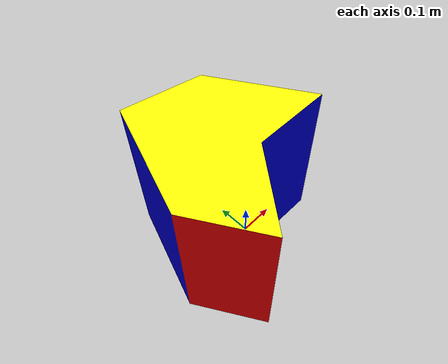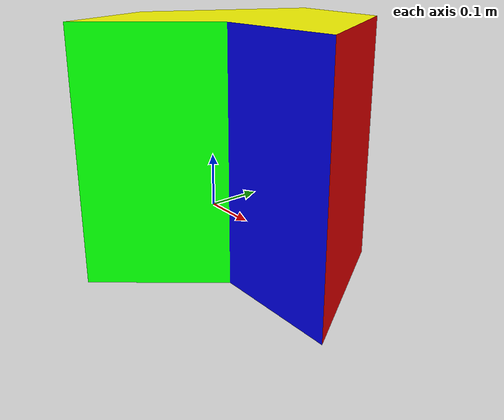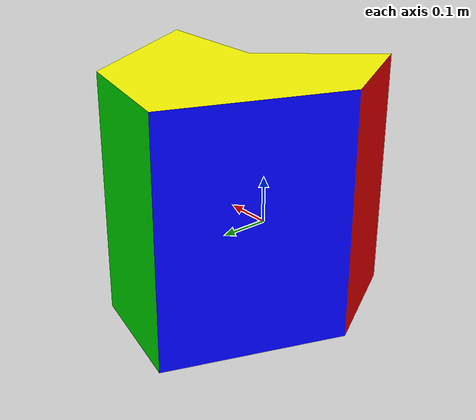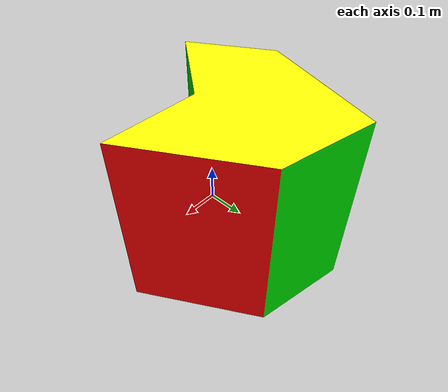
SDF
<?xml version="1.0"?>
<sdf version="1.6">
  <model name="6prism_final">
    <static>true</static>
    <pose>0 0 0 0 0 0</pose>
    <link name="link1">

      <visual name="visual1">
        <geometry>
          <mesh>
            <uri>model://6prism_final/meshes/6prism_final.DAE</uri>
   	    <scale>1 1 1</scale>
          </mesh>
        </geometry>
      </visual>

    </link>
  </model>
</sdf>
